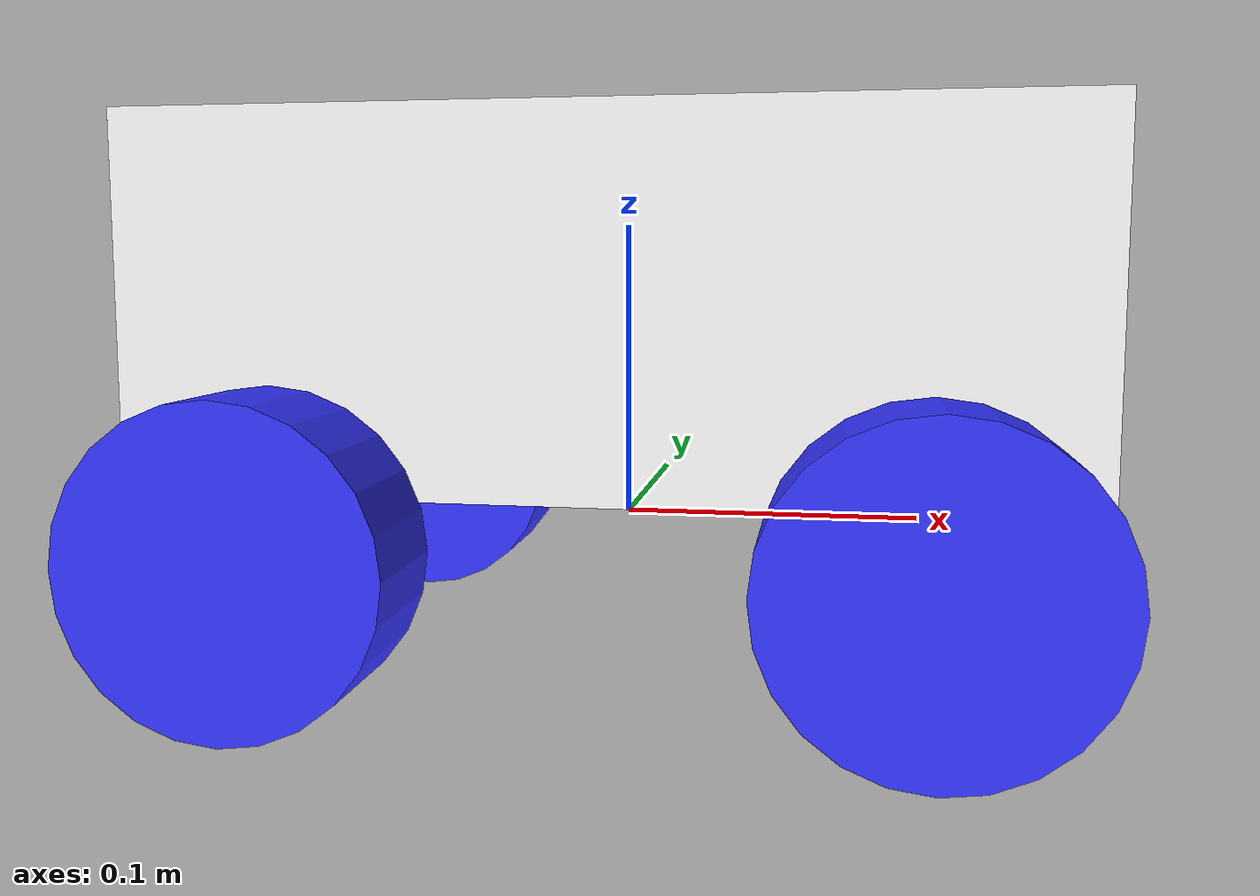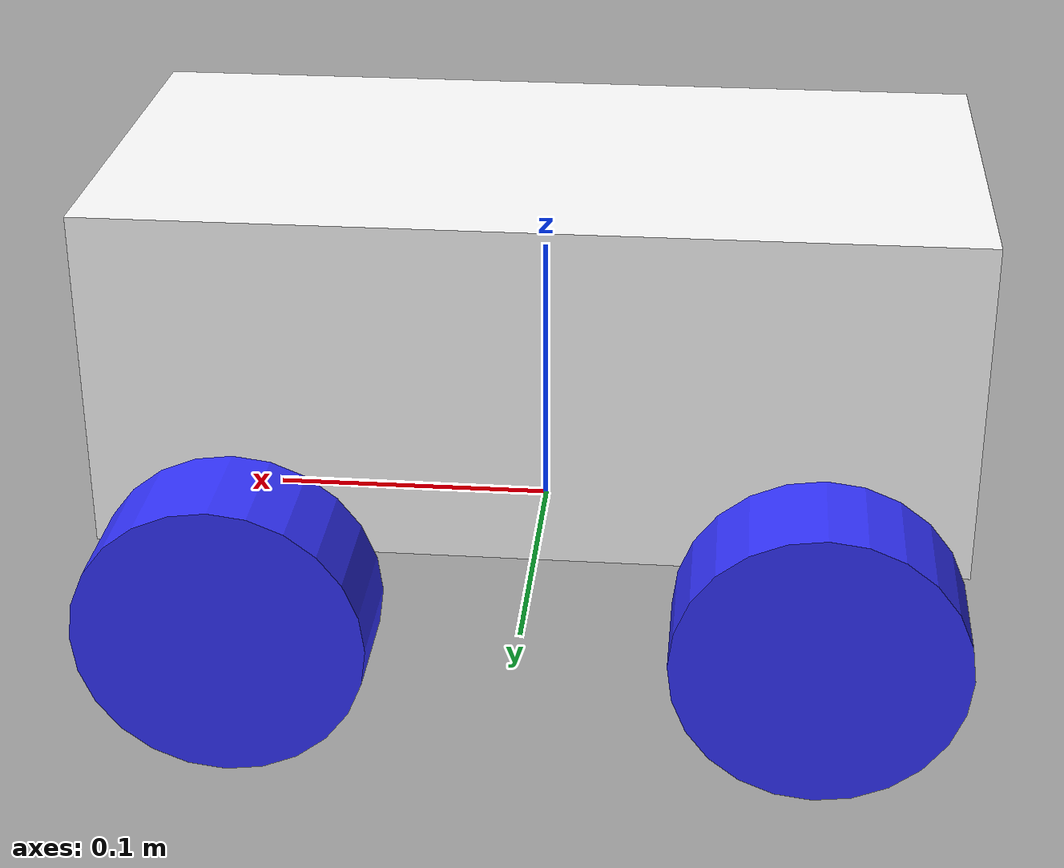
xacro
<?xml version="1.0"?>
<robot xmlns:xacro="http://www.ros.org/wiki/xacro" >

    <xacro:include filename="inertial_macros.xacro"/>

    <material name="white">
        <color rgba="1 1 1 1"/>
    </material>

    <material name="orange">
        <color rgba="1 0.3 0.1 1"/>
    </material>

    <material name="blue">
        <color rgba="0.2 0.2 1 1"/>
    </material>

    <material name="black">
        <color rgba="0 0 0 1"/>
    </material>

    <material name="red">
        <color rgba="1 0 0 1"/>
    </material>

    <!-- BASE LINK -->
    <link name="base_link">
    </link>

    <!-- BASE_FOOTPRINT LINK -->

    <joint name="base_footprint_joint" type="fixed">
        <parent link="base_link"/>
        <child link="base_footprint"/>
        <origin xyz="0 0 0" rpy="0 0 0"/>
    </joint>

    <link name="base_footprint">
    </link>
    <!-- CHASSIS LINK -->

    <joint name="chassis_joint" type="fixed">
        <parent link="base_link"/>
        <child link="chassis"/>
        <origin xyz="-0.15 0 0"/>
    </joint>

    <link name="chassis">
        <visual>
            <origin xyz="0.15 0 0.075"/>
            <geometry>
                <box size="0.3 0.15 0.12"/>
            </geometry>
            <material name="white"/>
        </visual>
        <collision>
            <origin xyz="0.15 0 0.075"/>
            <geometry>
                <box size="0.3 0.15 0.12"/>
            </geometry>
        </collision>
        <xacro:inertial_box mass="0.5" x="0.3" y="0.15" z="0.11">
            <origin xyz="0.15 0 0.075" rpy="0 0 0"/>
        </xacro:inertial_box>
    </link>

    <gazebo reference="chassis">
        <material>Gazebo/White</material>
    </gazebo>

    <!-- LEFT BACK WHEEL LINK -->

    <joint name="left_back_wheel_joint" type="continuous">
        <parent link="base_link"/>
        <child link="left_back_wheel"/>
        <origin xyz="-0.1 0.095 0.0" rpy="-${pi/2} 0 0" />
        <axis xyz="0 0 1"/>
    </joint>

    <link name="left_back_wheel">
        <visual>
            <geometry>
                <cylinder radius="0.05" length="0.04"/>
            </geometry>
            <material name="blue"/>
        </visual>
        <collision>
            <geometry>
                <cylinder radius="0.05" length="0.04"/>
            </geometry>
        </collision>
        <xacro:inertial_cylinder mass="0.1" length="0.04" radius="0.05">
            <origin xyz="0 0 0" rpy="0 0 0"/>
        </xacro:inertial_cylinder>
    </link>

    <gazebo reference="left_back_wheel">
        <material>Gazebo/Blue</material>
    </gazebo>

    <!-- LEFT FRONT WHEEL LINK -->

    <joint name="left_front_wheel_joint" type="fixed">
        <parent link="base_link"/>
        <child link="left_front_wheel"/>
        <origin xyz="0.1 0.095 0.0" rpy="-${pi/2} 0 0"/>
        <axis xyz="0 0 1"/>
    </joint>

    <link name="left_front_wheel">
        <visual>
            <geometry>
                <cylinder radius="0.05" length="0.04"/>
            </geometry>
            <material name="blue"/>
        </visual>
        <collision>
            <geometry>
                <cylinder radius="0.05" length="0.04"/>
            </geometry>
        </collision>
        <xacro:inertial_cylinder mass="0.1" length="0.04" radius="0.05">
            <origin xyz="0 0 0" rpy="0 0 0"/>
        </xacro:inertial_cylinder>
    </link>

    <gazebo reference="left_front_wheel">
        <material>Gazebo/Blue</material>
        <mu1 value="0.001"/>
        <mu2 value="0.002"/>
    </gazebo>

    <!-- RIGHT BACK WHEEL LINK -->

    <joint name="right_back_wheel_joint" type="continuous">
        <parent link="base_link"/>
        <child link="right_back_wheel"/>
        <origin xyz="-0.1 -0.095 0.0" rpy="${pi/2} 0 0"/>
        <axis xyz="0 0 -1"/>
    </joint>

    <link name="right_back_wheel">
        <visual>
            <geometry>
                <cylinder radius="0.05" length="0.04"/>
            </geometry>
            <material name="blue"/>
        </visual>
        <collision>
            <geometry>
                <cylinder radius="0.05" length="0.04"/>
            </geometry>
        </collision>
        <xacro:inertial_cylinder mass="0.1" length="0.04" radius="0.05">
            <origin xyz="0 0 0" rpy="0 0 0"/>
        </xacro:inertial_cylinder>
    </link>

    <gazebo reference="right_back_wheel">
        <material>Gazebo/Blue</material>
    </gazebo>

    <!-- RIGHT FRONT WHEEL LINK -->

    <joint name="right_front_wheel_joint" type="fixed">
        <parent link="base_link"/>
        <child link="right_front_wheel"/>
        <origin xyz="0.1 -0.095 0.0" rpy="${pi/2} 0 0"/>
        <axis xyz="0 0 -1"/>
    </joint>

    <link name="right_front_wheel">
        <visual>
            <geometry>
                <cylinder radius="0.05" length="0.04"/>
            </geometry>
            <material name="blue"/>
        </visual>
        <collision>
            <geometry>
                <cylinder radius="0.05" length="0.04"/>
            </geometry>
        </collision>
        <xacro:inertial_cylinder mass="0.1" length="0.04" radius="0.05">
            <origin xyz="0 0 0" rpy="0 0 0"/>
        </xacro:inertial_cylinder>
    </link>

    <gazebo reference="right_front_wheel">
        <material>Gazebo/Blue</material>
        <mu1 value="0.001"/>
        <mu2 value="0.002"/>
    </gazebo>

</robot>
